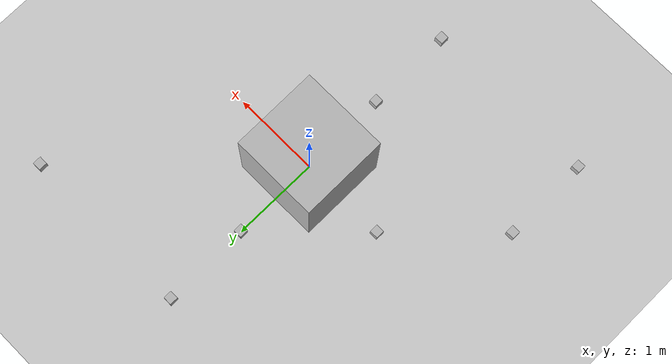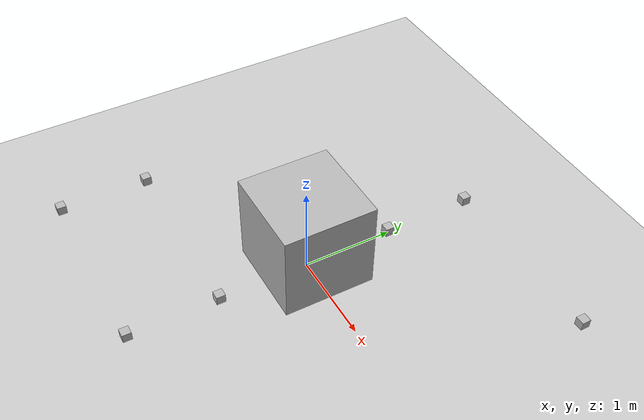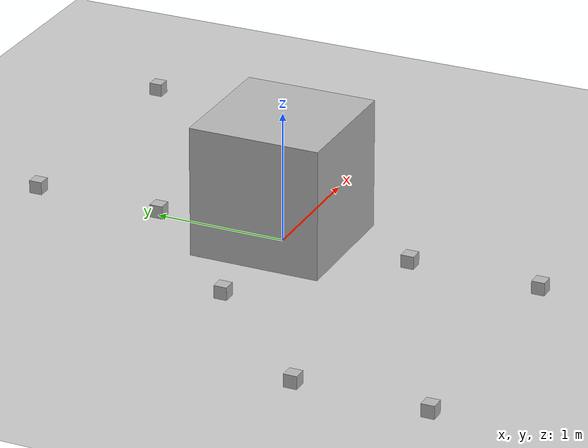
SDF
<!-- /* Copyright 2019 The MathWorks, Inc. -->
<?xml version="1.0"?>
<sdf version="1.4">
  <world name="default">
    <include>
      <uri>model://ground_plane</uri>
    </include>

    <include>
      <uri>model://sun</uri>
    </include>

   <model name ='unit_box'>
    <pose>0.0 0.0 0.5 0.0 0.0 0.0</pose>
    <link name ='link'>
      <pose>0.0 0.0 0.0 0.0 0.0 0.0</pose>
      <collision name ='collision'>
        <geometry>
          <box><size>1 1 1</size></box>
        </geometry>
      </collision>
      <visual name ='visual'>
        <geometry>
          <box><size>1 1 1</size></box>
        </geometry>
      </visual>
    </link>

      <joint type="revolute" name="joint">
	<pose>0.0 0.0 0.0 0.0 0.0 0.0</pose>
        <child>link</child>
        <parent>link</parent>
        <axis>
          <xyz>0 0 0</xyz>
        </axis>
      </joint>
   </model>

   <model name="camera0">
    <pose>0 1 0.05 0 0 0</pose>
    <link name="link">
      <inertial>
        <mass>0.1</mass>
        <inertia>
          <ixx>0.000166667</ixx>
          <iyy>0.000166667</iyy>
          <izz>0.000166667</izz>
        </inertia>
      </inertial>
      <collision name="collision">
        <geometry>
          <box>
            <size>0.1 0.1 0.1</size>
          </box>
        </geometry>
      </collision>
      <visual name="visual">
        <geometry>
          <box>
            <size>0.1 0.1 0.1</size>
          </box>
        </geometry>
      </visual>
      <sensor name="camera" type="camera">
        <camera>
          <horizontal_fov>1.047</horizontal_fov>
          <image>
            <width>320</width>
            <height>240</height>
          </image>
          <clip>
            <near>0.1</near>
            <far>100</far>
          </clip>
        </camera>
        <always_on>1</always_on>
        <update_rate>200</update_rate>
        <visualize>true</visualize>
      </sensor>
    </link>
  </model>

   <model name="camera1">
    <pose>0 2 0.05 0 0 0</pose>
    <link name="link">
      <inertial>
        <mass>0.1</mass>
        <inertia>
          <ixx>0.000166667</ixx>
          <iyy>0.000166667</iyy>
          <izz>0.000166667</izz>
        </inertia>
      </inertial>
      <collision name="collision">
        <geometry>
          <box>
            <size>0.1 0.1 0.1</size>
          </box>
        </geometry>
      </collision>
      <visual name="visual">
        <geometry>
          <box>
            <size>0.1 0.1 0.1</size>
          </box>
        </geometry>
      </visual>
      <sensor name="camera" type="camera">
        <camera>
          <horizontal_fov>1.047</horizontal_fov>
          <image>
            <width>320</width>
            <height>240</height>
          </image>
          <clip>
            <near>0.1</near>
            <far>100</far>
          </clip>
        </camera>
        <always_on>1</always_on>
        <update_rate>200</update_rate>
        <visualize>true</visualize>
      </sensor>
    </link>
  </model>

  <model name="depth_camera0">
    <link name="link">
      <pose>0 -1 0.05 0 0 0</pose>
      <inertial>
        <mass>0.1</mass>
        <inertia>
          <ixx>0.000166667</ixx>
          <iyy>0.000166667</iyy>
          <izz>0.000166667</izz>
        </inertia>
      </inertial>
      <collision name="collision">
        <geometry>
          <box>
            <size>0.1 0.1 0.1</size>
          </box>
        </geometry>
      </collision>
      <visual name="visual">
        <geometry>
          <box>
            <size>0.1 0.1 0.1</size>
          </box>
        </geometry>
      </visual>
      <sensor name="camera" type="depth">
        <camera>
          <horizontal_fov>1.047</horizontal_fov>
          <image>
            <width>320</width>
            <height>240</height>
          </image>
          <clip>
            <near>0.1</near>
            <far>100</far>
          </clip>
        </camera>
        <always_on>1</always_on>
        <update_rate>200</update_rate>
        <visualize>true</visualize>
      </sensor>
    </link>
  </model>

  <model name="depth_camera1">
    <link name="link">
      <pose>0 -2 0.05 0 0 0</pose>
      <inertial>
        <mass>0.1</mass>
        <inertia>
          <ixx>0.000166667</ixx>
          <iyy>0.000166667</iyy>
          <izz>0.000166667</izz>
        </inertia>
      </inertial>
      <collision name="collision">
        <geometry>
          <box>
            <size>0.1 0.1 0.1</size>
          </box>
        </geometry>
      </collision>
      <visual name="visual">
        <geometry>
          <box>
            <size>0.1 0.1 0.1</size>
          </box>
        </geometry>
      </visual>
      <sensor name="camera" type="depth">
        <camera>
          <horizontal_fov>1.047</horizontal_fov>
          <image>
            <width>320</width>
            <height>240</height>
          </image>
          <clip>
            <near>0.1</near>
            <far>100</far>
          </clip>
        </camera>
        <always_on>1</always_on>
        <update_rate>200</update_rate>
        <visualize>true</visualize>
      </sensor>
    </link>
  </model>

  <model name="imu0">
    <link name="link">
     <pose>-2 -1 0.05 0 0 0</pose>
      <inertial>
        <mass>0.1</mass>
      </inertial>
      <visual name="visual">
        <geometry>
          <box>
            <size>0.1 0.1 0.1</size>
          </box>
        </geometry>
      </visual>
      <collision name="collision">
        <geometry>
          <box>
            <size>0.1 0.1 0.1</size>
          </box>
        </geometry>
      </collision>
      <sensor name="imu" type="imu">
        <imu>
          <angular_velocity>
            <x>
              <noise type="none"></noise>
            </x>
            <y>
              <noise type="none"></noise>
            </y>
            <z>
              <noise type="none"></noise>
            </z>
          </angular_velocity>
          <linear_acceleration>
            <x>
              <noise type="none"></noise>
            </x>
            <y>
              <noise type="none"></noise>
            </y>
            <z>
              <noise type="none"></noise>
            </z>
          </linear_acceleration>
        </imu>
        <always_on>1</always_on>
        <update_rate>200</update_rate>
      </sensor>
    </link>
  </model>

  <model name="imu1">
    <link name="link">
     <pose>-1 0 0.05 0 0 0</pose>
      <inertial>
        <mass>0.1</mass>
      </inertial>
      <visual name="visual">
        <geometry>
          <box>
            <size>0.1 0.1 0.1</size>
          </box>
        </geometry>
      </visual>
      <collision name="collision">
        <geometry>
          <box>
            <size>0.1 0.1 0.1</size>
          </box>
        </geometry>
      </collision>
      <sensor name="imu" type="imu">
        <imu>
          <angular_velocity>
            <x>
              <noise type="none"></noise>
            </x>
            <y>
              <noise type="none"></noise>
            </y>
            <z>
              <noise type="none"></noise>
            </z>
          </angular_velocity>
          <linear_acceleration>
            <x>
              <noise type="none"></noise>
            </x>
            <y>
              <noise type="none"></noise>
            </y>
            <z>
              <noise type="none"></noise>
            </z>
          </linear_acceleration>
        </imu>
        <always_on>1</always_on>
        <update_rate>200</update_rate>
      </sensor>
    </link>
  </model>

  <model name="hokuyo0">
    <link name="link">
     <pose>-2 -2 0.05 0 0 0</pose>
      <gravity>false</gravity>
      <inertial>
        <mass>0.1</mass>
      </inertial>
      <collision name="collision">
        <geometry>
          <box>
            <size>0.1 0.1 0.1</size>
          </box>
        </geometry>
      </collision>
      <visual name="visual">
        <geometry>
          <box>
            <size>0.1 0.1 0.1</size>
          </box>
        </geometry>
      </visual>
      <sensor name="laser" type="ray">
        <pose>0.01 0 0.03 0 -0 0</pose>
        <ray>
          <scan>
            <horizontal>
              <samples>640</samples>
              <resolution>1</resolution>
              <min_angle>-3.14</min_angle>
              <max_angle>3.14</max_angle>
            </horizontal>
          </scan>
          <range>
            <min>0.08</min>
            <max>10</max>
            <resolution>0.01</resolution>
          </range>
          <noise type="none"></noise>
        </ray>
        <always_on>1</always_on>
        <update_rate>200</update_rate>
        <visualize>true</visualize>
      </sensor>
    </link>
  </model>

  <model name="hokuyo1">
    <link name="link">
     <pose>2 2 0.05 0 0 0</pose>
      <gravity>false</gravity>
      <inertial>
        <mass>0.1</mass>
      </inertial>
      <collision name="collision">
        <geometry>
          <box>
            <size>0.1 0.1 0.1</size>
          </box>
        </geometry>
      </collision>
      <visual name="visual">
        <geometry>
          <box>
            <size>0.1 0.1 0.1</size>
          </box>
        </geometry>
      </visual>
      <sensor name="laser" type="ray">
        <pose>0.01 0 0.03 0 -0 0</pose>
        <ray>
          <scan>
            <horizontal>
              <samples>640</samples>
              <resolution>1</resolution>
              <min_angle>-3.14</min_angle>
              <max_angle>3.14</max_angle>
            </horizontal>
          </scan>
          <range>
            <min>0.08</min>
            <max>10</max>
            <resolution>0.01</resolution>
          </range>
          <noise type="none"></noise>
        </ray>
        <always_on>1</always_on>
        <update_rate>200</update_rate>
        <visualize>true</visualize>
      </sensor>
    </link>
  </model>

  <gravity>0 0 0</gravity>  <!-- Use zero gravity to make sure IMU data is consistent-->

    <plugin name="GazeboPlugin" filename="lib/libGazeboCoSimPlugin.so"><portNumber>14581</portNumber></plugin>
  </world>
</sdf>
